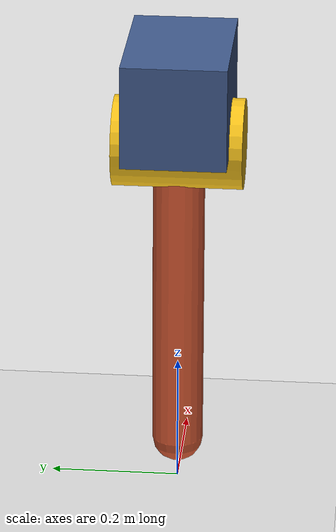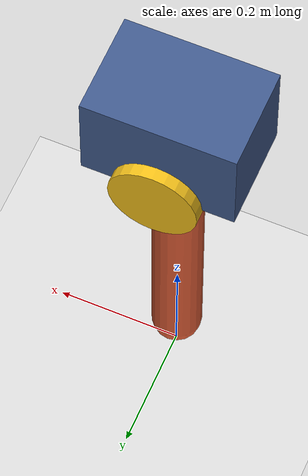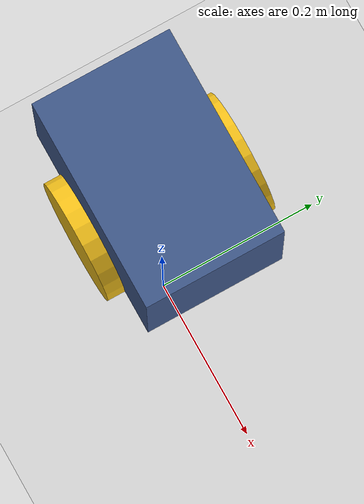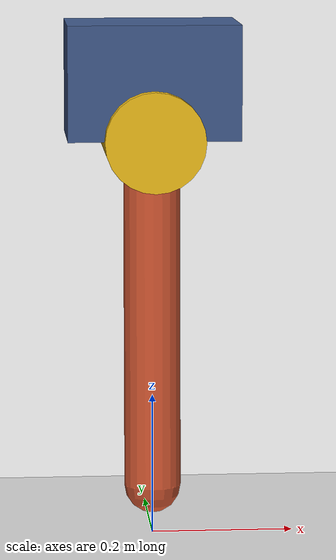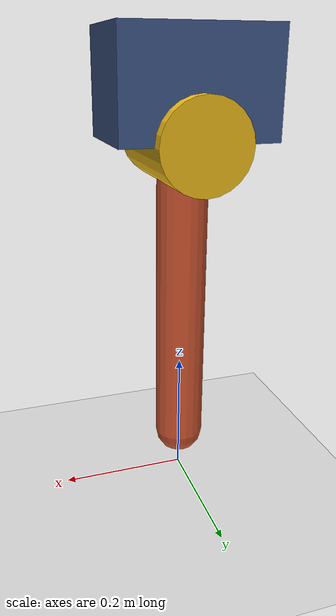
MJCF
<mujoco model="single_joint">
  <compiler angle="radian" autolimits="true"/>
  <option timestep="0.002" gravity="0 0 -9.81" integrator="RK4"/>

  <visual>
    <headlight ambient="0.4 0.4 0.4" diffuse="0.8 0.8 0.8"/>
  </visual>

  <worldbody>
    <geom name="floor" type="plane" size="2 2 0.1" rgba="0.85 0.85 0.85 1"/>

    <!-- A body without a joint is fixed (welded) to the world. -->
    <body name="base" pos="0 0 0.65">
      <geom name="base_geom" type="box" size="0.12 0.08 0.08"
            contype="0" conaffinity="0" rgba="0.25 0.35 0.55 1"/>
      <geom name="motor_housing" type="cylinder" pos="0 0 -0.08"
            size="0.07 0.1" euler="1.5708 0 0" mass="0"
            contype="0" conaffinity="0" rgba="0.95 0.75 0.1 1"/>

      <body name="link" pos="0 0 -0.08">
        <joint name="hinge" type="hinge" axis="0 1 0"
               range="-2.094 2.094" damping="0.15" armature="0.01"/>
        <geom name="link_geom" type="capsule" fromto="0 0 0 0 0 -0.5"
              size="0.04" mass="1" rgba="0.85 0.35 0.2 1"/>
      </body>
    </body>
  </worldbody>

  <!-- With gear=1, one control unit produces one N·m of joint torque. -->
  <actuator>
    <motor name="joint_motor" joint="hinge" gear="1"
           ctrllimited="true" ctrlrange="-2 2"/>
  </actuator>
</mujoco>
